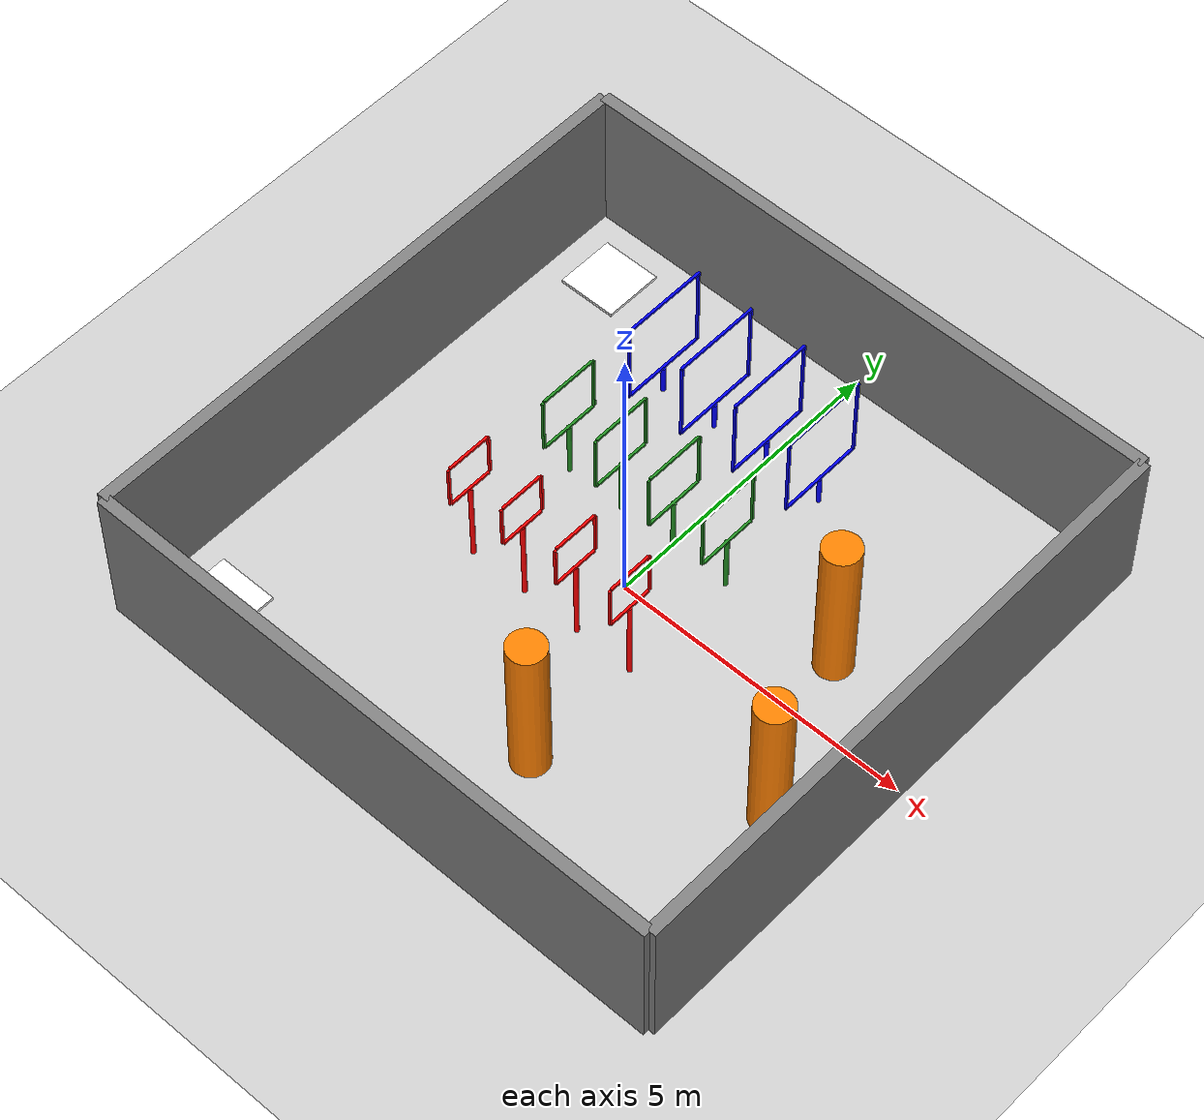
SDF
<sdf version="1.9">
 <world name="my_world">
  <physics type="ode">
   <max_step_size>0.004</max_step_size>
   <real_time_factor>1.0</real_time_factor>
   <real_time_update_rate>250</real_time_update_rate>
  </physics>
  <gravity>0 0 -9.8</gravity>
  <magnetic_field>6e-06 2.3e-05 -4.2e-05</magnetic_field>
  <atmosphere type="adiabatic"/>
  <scene>
   <grid>false</grid>
   <ambient>0.4 0.4 0.4 1</ambient>
   <background>0.7 0.7 0.7 1</background>
   <shadows>true</shadows>
  </scene>
  <model name="ground_plane">
   <static>true</static>
   <link name="link">
    <collision name="collision">
     <geometry><plane><normal>0 0 1</normal><size>1 1</size></plane></geometry>
    </collision>
    <visual name="visual">
     <geometry><plane><normal>0 0 1</normal><size>500 500</size></plane></geometry>
     <material>
      <ambient>0.8 0.8 0.8 1</ambient>
      <diffuse>0.8 0.8 0.8 1</diffuse>
      <specular>0.8 0.8 0.8 1</specular>
     </material>
    </visual>
   </link>
  </model>
  <light name="sunUTC" type="directional">
   <pose>0 0 500 0 -0 0</pose>
   <intensity>1</intensity>
   <direction>0.001 0.625 -0.78</direction>
   <diffuse>0.904 0.904 0.904 1</diffuse>
   <specular>0.271 0.271 0.271 1</specular>
   <attenuation><range>2000</range><linear>0</linear><constant>1</constant><quadratic>0</quadratic></attenuation>
  </light>
  <spherical_coordinates>
   <surface_model>EARTH_WGS84</surface_model>
   <world_frame_orientation>ENU</world_frame_orientation>
   <latitude_deg>47.397971057728974</latitude_deg>
   <longitude_deg>8.546163739800146</longitude_deg>
   <elevation>0</elevation>
  </spherical_coordinates>
  <model name="wall">
   <pose>5 0 1.25 0 0 0</pose>
   <link name="wall_link">
    <inertial><mass>10.0</mass></inertial>
    <collision name="collision"><geometry><box><size>0.2 10 2.5</size></box></geometry></collision>
    <visual name="visual">
     <geometry><box><size>0.2 10 2.5</size></box></geometry>
     <material>
      <ambient>0.5 0.5 0.5 1</ambient>
      <diffuse>0.5 0.5 0.5 1</diffuse>
      <specular>0.5 0.5 0.5 1</specular>
     </material>
    </visual>
   </link>
   <static>true</static>
  </model>
  <model name="wall2">
   <pose>-5 0 1.25 0 0 0</pose>
   <link name="wall_link">
    <inertial><mass>10.0</mass></inertial>
    <collision name="collision"><geometry><box><size>0.2 10 2.5</size></box></geometry></collision>
    <visual name="visual">
     <geometry><box><size>0.2 10 2.5</size></box></geometry>
     <material>
      <ambient>0.5 0.5 0.5 1</ambient>
      <diffuse>0.5 0.5 0.5 1</diffuse>
      <specular>0.5 0.5 0.5 1</specular>
     </material>
    </visual>
   </link>
   <static>true</static>
  </model>
  <model name="wall3">
   <pose>0 5 1.25 0 0 1.5708</pose>
   <link name="wall_link">
    <inertial><mass>10.0</mass></inertial>
    <collision name="collision"><geometry><box><size>0.2 10 2.5</size></box></geometry></collision>
    <visual name="visual">
     <geometry><box><size>0.2 10 2.5</size></box></geometry>
     <material>
      <ambient>0.5 0.5 0.5 1</ambient>
      <diffuse>0.5 0.5 0.5 1</diffuse>
      <specular>0.5 0.5 0.5 1</specular>
     </material>
    </visual>
   </link>
   <static>true</static>
  </model>
  <model name="wall4">
   <pose>0 -5 1.25 0 0 1.5708</pose>
   <link name="wall_link">
    <inertial><mass>10.0</mass></inertial>
    <collision name="collision"><geometry><box><size>0.2 10 2.5</size></box></geometry></collision>
    <visual name="visual">
     <geometry><box><size>0.2 10 2.5</size></box></geometry>
     <material>
      <ambient>0.5 0.5 0.5 1</ambient>
      <diffuse>0.5 0.5 0.5 1</diffuse>
      <specular>0.5 0.5 0.5 1</specular>
     </material>
    </visual>
   </link>
   <static>true</static>
  </model>
  <include><uri>model://platform</uri><name>platform_start</name><pose>-4 4 0.025 0 1.5708 0</pose></include>
  <include><uri>model://platform</uri><name>platform_end</name><pose>-4 -4 0.025 0 1.5708 0</pose></include>
  <include><uri>model://window</uri><name>window_1</name><pose>-2 3 0.25 0 0 0</pose></include>
  <include><uri>model://window</uri><name>window_2</name><pose>-1 3 0.25 0 0 0</pose></include>
  <include><uri>model://window</uri><name>window_3</name><pose>0 3 0.25 0 0 0</pose></include>
  <include><uri>model://window</uri><name>window_4</name><pose>1 3 0.25 0 0 0</pose></include>
  <include><uri>model://swindow</uri><name>swindow_1</name><pose>-2 1 0.5 0 0 0</pose></include>
  <include><uri>model://swindow</uri><name>swindow_2</name><pose>-1 1 0.5 0 0 0</pose></include>
  <include><uri>model://swindow</uri><name>swindow_3</name><pose>0 1 0.5 0 0 0</pose></include>
  <include><uri>model://swindow</uri><name>swindow_4</name><pose>1 1 0.5 0 0 0</pose></include>
  <include><uri>model://small2_window</uri><name>small_window_1</name><pose>-2 -1 0.75 0 0 0</pose></include>
  <include><uri>model://small2_window</uri><name>small_window_2</name><pose>-1 -1 0.75 0 0 0</pose></include>
  <include><uri>model://small2_window</uri><name>small_window_3</name><pose>0 -1 0.75 0 0 0</pose></include>
  <include><uri>model://small2_window</uri><name>small_window_4</name><pose>1 -1 0.75 0 0 0</pose></include>
  <model name="whiteboard">
   <pose>3 -4.9 1.25 0 0 1.5708</pose>
   <link name="whiteboard_link">
    <inertial><mass>2.0</mass></inertial>
    <collision name="collision"><geometry><box><size>0.05 1.5 1.2</size></box></geometry></collision>
    <visual name="visual">
     <geometry><box><size>0.05 1.5 1.2</size></box></geometry>
     <material><ambient>1 1 1 1</ambient><diffuse>1 1 1 1</diffuse><specular>1 1 1 1</specular></material>
    </visual>
   </link>
   <static>true</static>
  </model>
  <include><uri>model://column</uri><name>column_1</name><pose>3 1 1.35 0 0 0</pose></include>
  <include><uri>model://column</uri><name>column_2</name><pose>4 -1.5 1.35 0 0 0</pose></include>
  <include><uri>model://column</uri><name>column_3</name><pose>1 -3 1.35 0 0 0</pose></include>
 </world>
</sdf>

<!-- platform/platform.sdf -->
<sdf version="1.8">
<model name="platform">
        <pose>0 0 0 0 1.5708 0</pose>
        <link name="platform_link">
            <inertial>
                <mass>3.0</mass>
            </inertial>
            <collision name="collision">
                <geometry>
                    <box>
                        <size>0.05 1 1</size>
                    </box>
                </geometry>
            </collision>
            <visual name="visual">
                <geometry>
                    <box>
                        <size>0.05 1 1</size>
                    </box>
                </geometry>

                <material>
                    <ambient>1 1 1 1</ambient>
                    <diffuse>1 1 1 1</diffuse>
                    <specular>1 1 1 1</specular>
                </material>
            </visual>
        </link>
        <static>true</static>
    </model>
</sdf>

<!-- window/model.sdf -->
<sdf version="1.8">
<model name="window_on_post">

        <pose>0 0 0.25 0 0 0</pose>
        <static>true</static>

        <link name="base_ring_link">
            <pose>0 0 0 0 0 0</pose>
            <inertial>
                <mass>1.0</mass>
            </inertial>
            <collision name="collision">
                <geometry>
                    <cylinder>
                        <radius>0.038</radius>
                        <length>0.5</length>
                    </cylinder>
                </geometry>
            </collision>
            <visual name="visual">
                <geometry>
                    <cylinder>
                        <radius>0.038</radius>
                        <length>0.5</length>
                    </cylinder>
                </geometry>
                <material>
                    <ambient>0.0 0.0 1.0 1</ambient>
                    <diffuse>0.0 0.0 1.0 1</diffuse>
                    <specular>0.7 0.7 1.0 1</specular>
                </material>
            </visual>
        </link>

        <link name="top_beam">
            <pose>0 0 1.735 0 0 0</pose>
            <visual name="visual">
              <geometry>
                <box><size>0.04 1.5 0.04</size></box>
              </geometry>
              <material> <ambient>0.0 0.0 1.0 1</ambient>
                <diffuse>0.0 0.0 1.0 1</diffuse>
                <specular>0.7 0.7 1.0 1</specular>
              </material>
            </visual>
            <collision name="collision">
              <geometry><box><size>0.04 1.5 0.04</size></box></geometry>
            </collision>
        </link>

        <link name="bottom_beam">
            <pose>0 0 0.2746 0 0 0</pose>
            <visual name="visual">
              <geometry>
                <box><size>0.04 1.5 0.04</size></box>
              </geometry>
              <material>
                <ambient>0.0 0.0 1.0 1</ambient>
                <diffuse>0.0 0.0 1.0 1</diffuse>
                <specular>0.7 0.7 1.0 1</specular>
              </material>
            </visual>
            <collision name="collision">
              <geometry><box><size>0.04 1.5 0.04</size></box></geometry>
            </collision>
        </link>

        <link name="left_beam">
            <pose>0 0.73 1.005 0 0 0</pose>
            <visual name="visual">
              <geometry>
                <box><size>0.04 0.04 1.42</size></box>
              </geometry>
              <material>
                <ambient>0.0 0.0 1.0 1</ambient>
                <diffuse>0.0 0.0 1.0 1</diffuse>
                <specular>0.7 0.7 1.0 1</specular>
              </material>
            </visual>
            <collision name="collision">
              <geometry><box><size>0.04 0.04 1.42</size></box></geometry>
            </collision>
        </link>

        <link name="right_beam">
            <pose>0 -0.73 1.005 0 0 0</pose>
            <visual name="visual">
              <geometry>
                <box><size>0.04 0.04 1.42</size></box>
              </geometry>
              <material>
                <ambient>0.0 0.0 1.0 1</ambient>
                <diffuse>0.0 0.0 1.0 1</diffuse>
                <specular>0.7 0.7 1.0 1</specular>
              </material>
            </visual>
            <collision name="collision">
              <geometry><box><size>0.04 0.04 1.42</size></box></geometry>
            </collision>
        </link>
    </model>
</sdf>

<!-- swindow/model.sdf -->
<sdf version="1.8">
<model name="small_window">

        <pose>0 0 0.5 0 0 0</pose>
        <static>true</static>

        <link name="base_ring_link">
            <pose>0 0 0 0 0 0</pose>
            <inertial>
                <mass>1.0</mass>
            </inertial>
            <collision name="collision">
                <geometry>
                    <cylinder>
                        <radius>0.038</radius>
                        <length>1</length>
                    </cylinder>
                </geometry>
            </collision>
            <visual name="visual">
                <geometry>
                    <cylinder>
                        <radius>0.038</radius>
                        <length>1</length>
                    </cylinder>
                </geometry>
                <material>
                    <ambient>0.13 0.55 0.13 1</ambient>
                    <diffuse>0.13 0.55 0.13 1</diffuse>
                    <specular>0.1 0.1 0.1 1</specular>
                </material>
            </visual>
        </link>

        <link name="top_beam">
            <pose>0 0 1.52 0 0 0</pose>
            <visual name="visual">
              <geometry>
                <box><size>0.04 1 0.04</size></box>
              </geometry>
              <material>
                <ambient>0.13 0.55 0.13 1</ambient>
                <diffuse>0.13 0.55 0.13 1</diffuse>
                <specular>0.1 0.1 0.1 1</specular>
              </material>
            </visual>
            <collision name="collision">
              <geometry><box><size>0.04 1 0.04</size></box></geometry>
            </collision>
        </link>

        <link name="bottom_beam">
            <pose>0 0 0.4946 0 0 0</pose>
            <visual name="visual">
              <geometry>
                <box><size>0.04 1 0.04</size></box>
              </geometry>
              <material>
                <ambient>0.13 0.55 0.13 1</ambient>
                <diffuse>0.13 0.55 0.13 1</diffuse>
                <specular>0.1 0.1 0.1 1</specular>
              </material>
            </visual>
            <collision name="collision">
              <geometry><box><size>0.04 1 0.04</size></box></geometry>
            </collision>
        </link>

        <link name="left_beam">
            <pose>0 0.52 1.005 0 0 0</pose>
            <visual name="visual">
              <geometry>
                <box><size>0.04 0.04 1</size></box>
              </geometry>
              <material>
                <ambient>0.13 0.55 0.13 1</ambient>
                <diffuse>0.13 0.55 0.13 1</diffuse>
                <specular>0.1 0.1 0.1 1</specular>
              </material>
            </visual>
            <collision name="collision">
              <geometry><box><size>0.04 0.04 1</size></box></geometry>
            </collision>
        </link>

        <link name="right_beam">
            <pose>0 -0.52 1.005 0 0 0</pose>
            <visual name="visual">
              <geometry>
                <box><size>0.04 0.04 1</size></box>
              </geometry>
              <material>
                <ambient>0.13 0.55 0.13 1</ambient>
                <diffuse>0.13 0.55 0.13 1</diffuse>
                <specular>0.1 0.1 0.1 1</specular>
              </material>
            </visual>
            <collision name="collision">
              <geometry><box><size>0.04 0.04 1</size></box></geometry>
            </collision>
        </link>
    </model>
</sdf>

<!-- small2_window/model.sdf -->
<sdf version="1.8">
<model name="small2_window">

        <pose>0 0 0.75 0 0 0</pose>
        <static>true</static>

        <link name="base_ring_link">
            <pose>0 0 0 0 0 0</pose>
            <inertial>
                <mass>1.0</mass>
            </inertial>
            <collision name="collision">
                <geometry>
                    <cylinder>
                        <radius>0.038</radius>
                        <length>1.5</length>
                    </cylinder>
                </geometry>
            </collision>
            <visual name="visual">
                <geometry>
                    <cylinder>
                        <radius>0.038</radius>
                        <length>1.5</length>
                    </cylinder>
                </geometry>
                <material>
                    <ambient>1 0 0 1</ambient>
                    <diffuse>1 0 0 1</diffuse>
                    <specular>0.1 0.1 0.1 1</specular>
                </material>
            </visual>
        </link>

        <link name="top_beam">
            <pose>0 0 1.54 0 0 0</pose>
            <visual name="visual">
              <geometry>
                <box><size>0.04 0.75 0.04</size></box>
              </geometry>
              <material>
                <ambient>1 0 0 1</ambient>
                <diffuse>1 0 0 1</diffuse>
                <specular>0.1 0.1 0.1 1</specular>
              </material>
            </visual>
            <collision name="collision">
              <geometry><box><size>0.04 0.75 0.04</size></box></geometry>
            </collision>
        </link>

        <link name="bottom_beam">
            <pose>0 0 0.7546 0 0 0</pose>
            <visual name="visual">
              <geometry>
                <box><size>0.04 0.75 0.04</size></box>
              </geometry>
              <material>
                <ambient>1 0 0 1</ambient>
                <diffuse>1 0 0 1</diffuse>
                <specular>0.1 0.1 0.1 1</specular>
              </material>
            </visual>
            <collision name="collision">
              <geometry><box><size>0.04 0.75 0.04</size></box></geometry>
            </collision>
        </link>

        <link name="left_beam">
            <pose>0 0.395 1.15 0 0 0</pose>
            <visual name="visual">
              <geometry>
                <box><size>0.04 0.04 0.75</size></box>
              </geometry>
              <material>
                <ambient>1 0 0 1</ambient>
                <diffuse>1 0 0 1</diffuse>
                <specular>0.1 0.1 0.1 1</specular>
              </material>
            </visual>
            <collision name="collision">
              <geometry><box><size>0.04 0.04 0.75</size></box></geometry>
            </collision>
        </link>

        <link name="right_beam">
            <pose>0 -0.395 1.15 0 0 0</pose>
            <visual name="visual">
              <geometry>
                <box><size>0.04 0.04 0.75</size></box>
              </geometry>
              <material>
                <ambient>1 0 0 1</ambient>
                <diffuse>1 0 0 1</diffuse>
                <specular>0.1 0.1 0.1 1</specular>
              </material>
            </visual>
            <collision name="collision">
              <geometry><box><size>0.04 0.04 0.75</size></box></geometry>
            </collision>
        </link>
    </model>
</sdf>

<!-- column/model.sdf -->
<sdf version="1.8">
<model name="column">
      <pose>0 0 1.35 0 0 0</pose>
        <link name="column_link">
          <inertial>
            <mass>10.0</mass>
          </inertial>
          <collision name="collision">
            <geometry>
              <cylinder>
                <radius>0.3</radius>
                <length>2.3</length>
              </cylinder>
            </geometry>
          </collision>
          <visual name="visual">
            <geometry>
              <cylinder>
                <radius>0.3</radius>
                <length>2.7</length>
              </cylinder>
            </geometry>
            <material>
              <ambient>1 0.5 0 1</ambient>
              <diffuse>1 0.5 0 1</diffuse>
              <specular>1 0.5 0 1</specular>
            </material>
          </visual>
        </link>
      </model>
</sdf>
